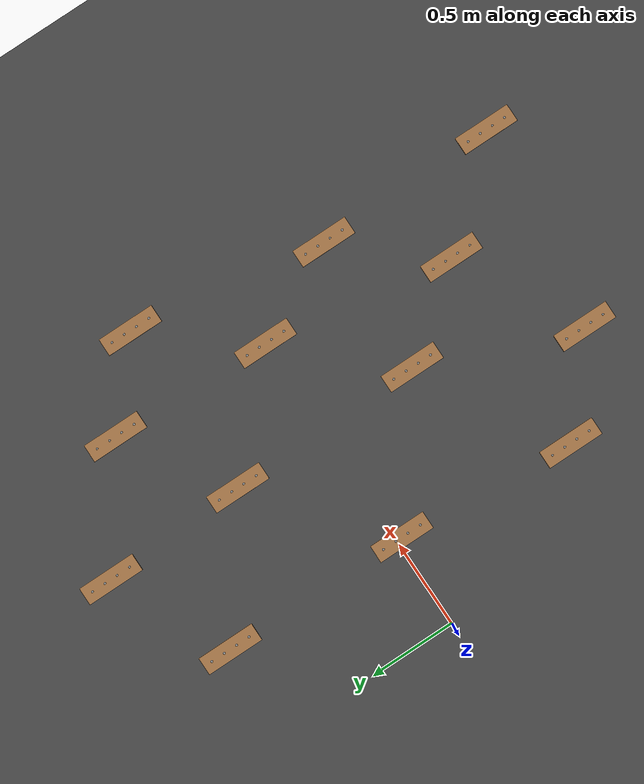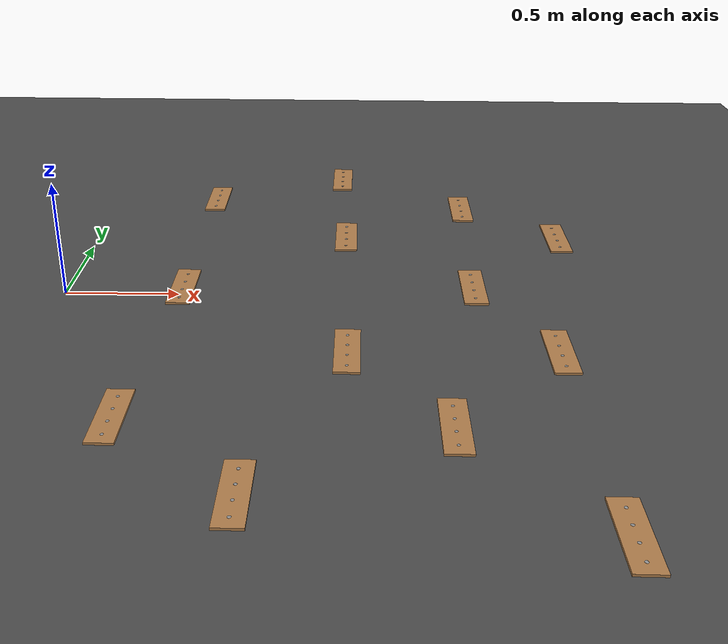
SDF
<sdf version="1.7">
 <world name="default">
  <model name="ground_plane">
   <static>1</static>
   <link name="link">
    <collision name="collision">
     <geometry><plane><normal>0 0 1</normal><size>100 100</size></plane></geometry>
     <surface>
      <contact><collide_bitmask>65535</collide_bitmask></contact>
      <friction><ode><mu>100</mu><mu2>50</mu2></ode></friction>
     </surface>
    </collision>
    <visual name="visual">
     <cast_shadows>0</cast_shadows>
     <geometry><plane><normal>0 0 1</normal><size>100 100</size></plane></geometry>
     <material>
      <script><uri>file://media/materials/scripts/gazebo.material</uri><name>Gazebo/Grey</name></script>
     </material>
    </visual>
   </link>
  </model>
  <model name="asphalt_plane">
   <static>1</static>
   <link name="link">
    <collision name="collision"><geometry><box><size>20 20 0.1</size></box></geometry></collision>
    <visual name="visual">
     <cast_shadows>0</cast_shadows>
     <geometry><box><size>20 20 0.1</size></box></geometry>
     <material>
      <script>
       <uri>model://asphalt_plane/materials/scripts</uri>
       <uri>model://asphalt_plane/materials/textures</uri>
       <name>vrc/asphalt</name>
      </script>
     </material>
    </visual>
   </link>
   <pose>7.06721 0.007221 0 0 -0 0</pose>
  </model>
  <model name="wooden_board">
   <link name="base">
    <pose>0 0 0.00523 0 -0 0</pose>
    <inertial>
     <mass>0.2765</mass>
     <inertia>
      <ixx>0.0025148</ixx>
      <ixy>0</ixy>
      <ixz>0</ixz>
      <iyy>0.00024037</iyy>
      <iyz>0</iyz>
      <izz>0.00275013</izz>
     </inertia>
    </inertial>
    <collision name="collision">
     <geometry><box><size>0.1016 0.3302 0.01046</size></box></geometry>
     <surface>
      <contact>
       <poissons_ratio>0.347</poissons_ratio>
       <elastic_modulus>8.8e+09</elastic_modulus>
       <ode><kp>100000</kp><kd>100</kd><max_vel>100</max_vel><min_depth>0.001</min_depth></ode>
      </contact>
      <friction>
       <torsional>
        <coefficient>1</coefficient>
        <use_patch_radius>0</use_patch_radius>
        <surface_radius>0.01</surface_radius>
       </torsional>
      </friction>
     </surface>
    </collision>
    <visual name="visual">
     <geometry><box><size>0.1016 0.3302 0.01046</size></box></geometry>
     <material>
      <script><uri>file://media/materials/scripts/gazebo.material</uri><name>Gazebo/Wood</name></script>
     </material>
    </visual>
    <visual name="tee_nut_1">
     <pose>0 -0.116 0 0 -0 0</pose>
     <geometry><cylinder><radius>0.00635</radius><length>0.0105646</length></cylinder></geometry>
     <material>
      <script><uri>file://media/materials/scripts/gazebo.material</uri><name>Gazebo/Grey</name></script>
     </material>
    </visual>
    <visual name="tee_nut_2">
     <pose>0 -0.038 0 0 -0 0</pose>
     <geometry><cylinder><radius>0.00635</radius><length>0.0105646</length></cylinder></geometry>
     <material>
      <script><uri>file://media/materials/scripts/gazebo.material</uri><name>Gazebo/Grey</name></script>
     </material>
    </visual>
    <visual name="tee_nut_3">
     <pose>0 0.038 0 0 -0 0</pose>
     <geometry><cylinder><radius>0.00635</radius><length>0.0105646</length></cylinder></geometry>
     <material>
      <script><uri>file://media/materials/scripts/gazebo.material</uri><name>Gazebo/Grey</name></script>
     </material>
    </visual>
    <visual name="tee_nut_4">
     <pose>0 0.116 0 0 -0 0</pose>
     <geometry><cylinder><radius>0.00635</radius><length>0.0105646</length></cylinder></geometry>
     <material>
      <script><uri>file://media/materials/scripts/gazebo.material</uri><name>Gazebo/Grey</name></script>
     </material>
    </visual>
   </link>
   <pose>0.44811 -1.04579 0.048993 0 -0 6e-05</pose>
  </model>
  <model name="wooden_board_0">
   <link name="base">
    <pose>0 0 0.00523 0 -0 0</pose>
    <inertial>
     <mass>0.2765</mass>
     <inertia>
      <ixx>0.0025148</ixx>
      <ixy>0</ixy>
      <ixz>0</ixz>
      <iyy>0.00024037</iyy>
      <iyz>0</iyz>
      <izz>0.00275013</izz>
     </inertia>
    </inertial>
    <collision name="collision">
     <geometry><box><size>0.1016 0.3302 0.01046</size></box></geometry>
     <surface>
      <contact>
       <poissons_ratio>0.347</poissons_ratio>
       <elastic_modulus>8.8e+09</elastic_modulus>
       <ode><kp>100000</kp><kd>100</kd><max_vel>100</max_vel><min_depth>0.001</min_depth></ode>
      </contact>
      <friction>
       <torsional>
        <coefficient>1</coefficient>
        <use_patch_radius>0</use_patch_radius>
        <surface_radius>0.01</surface_radius>
       </torsional>
      </friction>
     </surface>
    </collision>
    <visual name="visual">
     <geometry><box><size>0.1016 0.3302 0.01046</size></box></geometry>
     <material>
      <script><uri>file://media/materials/scripts/gazebo.material</uri><name>Gazebo/Wood</name></script>
     </material>
    </visual>
    <visual name="tee_nut_1">
     <pose>0 -0.116 0 0 -0 0</pose>
     <geometry><cylinder><radius>0.00635</radius><length>0.0105646</length></cylinder></geometry>
     <material>
      <script><uri>file://media/materials/scripts/gazebo.material</uri><name>Gazebo/Grey</name></script>
     </material>
    </visual>
    <visual name="tee_nut_2">
     <pose>0 -0.038 0 0 -0 0</pose>
     <geometry><cylinder><radius>0.00635</radius><length>0.0105646</length></cylinder></geometry>
     <material>
      <script><uri>file://media/materials/scripts/gazebo.material</uri><name>Gazebo/Grey</name></script>
     </material>
    </visual>
    <visual name="tee_nut_3">
     <pose>0 0.038 0 0 -0 0</pose>
     <geometry><cylinder><radius>0.00635</radius><length>0.0105646</length></cylinder></geometry>
     <material>
      <script><uri>file://media/materials/scripts/gazebo.material</uri><name>Gazebo/Grey</name></script>
     </material>
    </visual>
    <visual name="tee_nut_4">
     <pose>0 0.116 0 0 -0 0</pose>
     <geometry><cylinder><radius>0.00635</radius><length>0.0105646</length></cylinder></geometry>
     <material>
      <script><uri>file://media/materials/scripts/gazebo.material</uri><name>Gazebo/Grey</name></script>
     </material>
    </visual>
   </link>
   <pose>0.538764 1.03885 0.048993 0 -0 6e-05</pose>
  </model>
  <model name="wooden_board_1">
   <link name="base">
    <pose>0 0 0.00523 0 -0 0</pose>
    <inertial>
     <mass>0.2765</mass>
     <inertia>
      <ixx>0.0025148</ixx>
      <ixy>0</ixy>
      <ixz>0</ixz>
      <iyy>0.00024037</iyy>
      <iyz>0</iyz>
      <izz>0.00275013</izz>
     </inertia>
    </inertial>
    <collision name="collision">
     <geometry><box><size>0.1016 0.3302 0.01046</size></box></geometry>
     <surface>
      <contact>
       <poissons_ratio>0.347</poissons_ratio>
       <elastic_modulus>8.8e+09</elastic_modulus>
       <ode><kp>100000</kp><kd>100</kd><max_vel>100</max_vel><min_depth>0.001</min_depth></ode>
      </contact>
      <friction>
       <torsional>
        <coefficient>1</coefficient>
        <use_patch_radius>0</use_patch_radius>
        <surface_radius>0.01</surface_radius>
       </torsional>
      </friction>
     </surface>
    </collision>
    <visual name="visual">
     <geometry><box><size>0.1016 0.3302 0.01046</size></box></geometry>
     <material>
      <script><uri>file://media/materials/scripts/gazebo.material</uri><name>Gazebo/Wood</name></script>
     </material>
    </visual>
    <visual name="tee_nut_1">
     <pose>0 -0.116 0 0 -0 0</pose>
     <geometry><cylinder><radius>0.00635</radius><length>0.0105646</length></cylinder></geometry>
     <material>
      <script><uri>file://media/materials/scripts/gazebo.material</uri><name>Gazebo/Grey</name></script>
     </material>
    </visual>
    <visual name="tee_nut_2">
     <pose>0 -0.038 0 0 -0 0</pose>
     <geometry><cylinder><radius>0.00635</radius><length>0.0105646</length></cylinder></geometry>
     <material>
      <script><uri>file://media/materials/scripts/gazebo.material</uri><name>Gazebo/Grey</name></script>
     </material>
    </visual>
    <visual name="tee_nut_3">
     <pose>0 0.038 0 0 -0 0</pose>
     <geometry><cylinder><radius>0.00635</radius><length>0.0105646</length></cylinder></geometry>
     <material>
      <script><uri>file://media/materials/scripts/gazebo.material</uri><name>Gazebo/Grey</name></script>
     </material>
    </visual>
    <visual name="tee_nut_4">
     <pose>0 0.116 0 0 -0 0</pose>
     <geometry><cylinder><radius>0.00635</radius><length>0.0105646</length></cylinder></geometry>
     <material>
      <script><uri>file://media/materials/scripts/gazebo.material</uri><name>Gazebo/Grey</name></script>
     </material>
    </visual>
   </link>
   <pose>0.529233 -0.032208 0.048993 0 -0 6e-05</pose>
  </model>
  <model name="wooden_board_2">
   <link name="base">
    <pose>0 0 0.00523 0 -0 0</pose>
    <inertial>
     <mass>0.2765</mass>
     <inertia>
      <ixx>0.0025148</ixx>
      <ixy>0</ixy>
      <ixz>0</ixz>
      <iyy>0.00024037</iyy>
      <iyz>0</iyz>
      <izz>0.00275013</izz>
     </inertia>
    </inertial>
    <collision name="collision">
     <geometry><box><size>0.1016 0.3302 0.01046</size></box></geometry>
     <surface>
      <contact>
       <poissons_ratio>0.347</poissons_ratio>
       <elastic_modulus>8.8e+09</elastic_modulus>
       <ode><kp>100000</kp><kd>100</kd><max_vel>100</max_vel><min_depth>0.001</min_depth></ode>
      </contact>
      <friction>
       <torsional>
        <coefficient>1</coefficient>
        <use_patch_radius>0</use_patch_radius>
        <surface_radius>0.01</surface_radius>
       </torsional>
      </friction>
     </surface>
    </collision>
    <visual name="visual">
     <geometry><box><size>0.1016 0.3302 0.01046</size></box></geometry>
     <material>
      <script><uri>file://media/materials/scripts/gazebo.material</uri><name>Gazebo/Wood</name></script>
     </material>
    </visual>
    <visual name="tee_nut_1">
     <pose>0 -0.116 0 0 -0 0</pose>
     <geometry><cylinder><radius>0.00635</radius><length>0.0105646</length></cylinder></geometry>
     <material>
      <script><uri>file://media/materials/scripts/gazebo.material</uri><name>Gazebo/Grey</name></script>
     </material>
    </visual>
    <visual name="tee_nut_2">
     <pose>0 -0.038 0 0 -0 0</pose>
     <geometry><cylinder><radius>0.00635</radius><length>0.0105646</length></cylinder></geometry>
     <material>
      <script><uri>file://media/materials/scripts/gazebo.material</uri><name>Gazebo/Grey</name></script>
     </material>
    </visual>
    <visual name="tee_nut_3">
     <pose>0 0.038 0 0 -0 0</pose>
     <geometry><cylinder><radius>0.00635</radius><length>0.0105646</length></cylinder></geometry>
     <material>
      <script><uri>file://media/materials/scripts/gazebo.material</uri><name>Gazebo/Grey</name></script>
     </material>
    </visual>
    <visual name="tee_nut_4">
     <pose>0 0.116 0 0 -0 0</pose>
     <geometry><cylinder><radius>0.00635</radius><length>0.0105646</length></cylinder></geometry>
     <material>
      <script><uri>file://media/materials/scripts/gazebo.material</uri><name>Gazebo/Grey</name></script>
     </material>
    </visual>
   </link>
   <pose>1.24281 -0.573314 0.048993 0 -0 6e-05</pose>
  </model>
  <model name="wooden_board_3">
   <link name="base">
    <pose>0 0 0.00523 0 -0 0</pose>
    <inertial>
     <mass>0.2765</mass>
     <inertia>
      <ixx>0.0025148</ixx>
      <ixy>0</ixy>
      <ixz>0</ixz>
      <iyy>0.00024037</iyy>
      <iyz>0</iyz>
      <izz>0.00275013</izz>
     </inertia>
    </inertial>
    <collision name="collision">
     <geometry><box><size>0.1016 0.3302 0.01046</size></box></geometry>
     <surface>
      <contact>
       <poissons_ratio>0.347</poissons_ratio>
       <elastic_modulus>8.8e+09</elastic_modulus>
       <ode><kp>100000</kp><kd>100</kd><max_vel>100</max_vel><min_depth>0.001</min_depth></ode>
      </contact>
      <friction>
       <torsional>
        <coefficient>1</coefficient>
        <use_patch_radius>0</use_patch_radius>
        <surface_radius>0.01</surface_radius>
       </torsional>
      </friction>
     </surface>
    </collision>
    <visual name="visual">
     <geometry><box><size>0.1016 0.3302 0.01046</size></box></geometry>
     <material>
      <script><uri>file://media/materials/scripts/gazebo.material</uri><name>Gazebo/Wood</name></script>
     </material>
    </visual>
    <visual name="tee_nut_1">
     <pose>0 -0.116 0 0 -0 0</pose>
     <geometry><cylinder><radius>0.00635</radius><length>0.0105646</length></cylinder></geometry>
     <material>
      <script><uri>file://media/materials/scripts/gazebo.material</uri><name>Gazebo/Grey</name></script>
     </material>
    </visual>
    <visual name="tee_nut_2">
     <pose>0 -0.038 0 0 -0 0</pose>
     <geometry><cylinder><radius>0.00635</radius><length>0.0105646</length></cylinder></geometry>
     <material>
      <script><uri>file://media/materials/scripts/gazebo.material</uri><name>Gazebo/Grey</name></script>
     </material>
    </visual>
    <visual name="tee_nut_3">
     <pose>0 0.038 0 0 -0 0</pose>
     <geometry><cylinder><radius>0.00635</radius><length>0.0105646</length></cylinder></geometry>
     <material>
      <script><uri>file://media/materials/scripts/gazebo.material</uri><name>Gazebo/Grey</name></script>
     </material>
    </visual>
    <visual name="tee_nut_4">
     <pose>0 0.116 0 0 -0 0</pose>
     <geometry><cylinder><radius>0.00635</radius><length>0.0105646</length></cylinder></geometry>
     <material>
      <script><uri>file://media/materials/scripts/gazebo.material</uri><name>Gazebo/Grey</name></script>
     </material>
    </visual>
   </link>
   <pose>1.22143 0.541833 0.048993 0 -0 6e-05</pose>
  </model>
  <model name="wooden_board_4">
   <link name="base">
    <pose>0 0 0.00523 0 -0 0</pose>
    <inertial>
     <mass>0.2765</mass>
     <inertia>
      <ixx>0.0025148</ixx>
      <ixy>0</ixy>
      <ixz>0</ixz>
      <iyy>0.00024037</iyy>
      <iyz>0</iyz>
      <izz>0.00275013</izz>
     </inertia>
    </inertial>
    <collision name="collision">
     <geometry><box><size>0.1016 0.3302 0.01046</size></box></geometry>
     <surface>
      <contact>
       <poissons_ratio>0.347</poissons_ratio>
       <elastic_modulus>8.8e+09</elastic_modulus>
       <ode><kp>100000</kp><kd>100</kd><max_vel>100</max_vel><min_depth>0.001</min_depth></ode>
      </contact>
      <friction>
       <torsional>
        <coefficient>1</coefficient>
        <use_patch_radius>0</use_patch_radius>
        <surface_radius>0.01</surface_radius>
       </torsional>
      </friction>
     </surface>
    </collision>
    <visual name="visual">
     <geometry><box><size>0.1016 0.3302 0.01046</size></box></geometry>
     <material>
      <script><uri>file://media/materials/scripts/gazebo.material</uri><name>Gazebo/Wood</name></script>
     </material>
    </visual>
    <visual name="tee_nut_1">
     <pose>0 -0.116 0 0 -0 0</pose>
     <geometry><cylinder><radius>0.00635</radius><length>0.0105646</length></cylinder></geometry>
     <material>
      <script><uri>file://media/materials/scripts/gazebo.material</uri><name>Gazebo/Grey</name></script>
     </material>
    </visual>
    <visual name="tee_nut_2">
     <pose>0 -0.038 0 0 -0 0</pose>
     <geometry><cylinder><radius>0.00635</radius><length>0.0105646</length></cylinder></geometry>
     <material>
      <script><uri>file://media/materials/scripts/gazebo.material</uri><name>Gazebo/Grey</name></script>
     </material>
    </visual>
    <visual name="tee_nut_3">
     <pose>0 0.038 0 0 -0 0</pose>
     <geometry><cylinder><radius>0.00635</radius><length>0.0105646</length></cylinder></geometry>
     <material>
      <script><uri>file://media/materials/scripts/gazebo.material</uri><name>Gazebo/Grey</name></script>
     </material>
    </visual>
    <visual name="tee_nut_4">
     <pose>0 0.116 0 0 -0 0</pose>
     <geometry><cylinder><radius>0.00635</radius><length>0.0105646</length></cylinder></geometry>
     <material>
      <script><uri>file://media/materials/scripts/gazebo.material</uri><name>Gazebo/Grey</name></script>
     </material>
    </visual>
   </link>
   <pose>1.77526 0.001323 0.048993 0 -0 6e-05</pose>
  </model>
  <model name="wooden_board_5">
   <link name="base">
    <pose>0 0 0.00523 0 -0 0</pose>
    <inertial>
     <mass>0.2765</mass>
     <inertia>
      <ixx>0.0025148</ixx>
      <ixy>0</ixy>
      <ixz>0</ixz>
      <iyy>0.00024037</iyy>
      <iyz>0</iyz>
      <izz>0.00275013</izz>
     </inertia>
    </inertial>
    <collision name="collision">
     <geometry><box><size>0.1016 0.3302 0.01046</size></box></geometry>
     <surface>
      <contact>
       <poissons_ratio>0.347</poissons_ratio>
       <elastic_modulus>8.8e+09</elastic_modulus>
       <ode><kp>100000</kp><kd>100</kd><max_vel>100</max_vel><min_depth>0.001</min_depth></ode>
      </contact>
      <friction>
       <torsional>
        <coefficient>1</coefficient>
        <use_patch_radius>0</use_patch_radius>
        <surface_radius>0.01</surface_radius>
       </torsional>
      </friction>
     </surface>
    </collision>
    <visual name="visual">
     <geometry><box><size>0.1016 0.3302 0.01046</size></box></geometry>
     <material>
      <script><uri>file://media/materials/scripts/gazebo.material</uri><name>Gazebo/Wood</name></script>
     </material>
    </visual>
    <visual name="tee_nut_1">
     <pose>0 -0.116 0 0 -0 0</pose>
     <geometry><cylinder><radius>0.00635</radius><length>0.0105646</length></cylinder></geometry>
     <material>
      <script><uri>file://media/materials/scripts/gazebo.material</uri><name>Gazebo/Grey</name></script>
     </material>
    </visual>
    <visual name="tee_nut_2">
     <pose>0 -0.038 0 0 -0 0</pose>
     <geometry><cylinder><radius>0.00635</radius><length>0.0105646</length></cylinder></geometry>
     <material>
      <script><uri>file://media/materials/scripts/gazebo.material</uri><name>Gazebo/Grey</name></script>
     </material>
    </visual>
    <visual name="tee_nut_3">
     <pose>0 0.038 0 0 -0 0</pose>
     <geometry><cylinder><radius>0.00635</radius><length>0.0105646</length></cylinder></geometry>
     <material>
      <script><uri>file://media/materials/scripts/gazebo.material</uri><name>Gazebo/Grey</name></script>
     </material>
    </visual>
    <visual name="tee_nut_4">
     <pose>0 0.116 0 0 -0 0</pose>
     <geometry><cylinder><radius>0.00635</radius><length>0.0105646</length></cylinder></geometry>
     <material>
      <script><uri>file://media/materials/scripts/gazebo.material</uri><name>Gazebo/Grey</name></script>
     </material>
    </visual>
   </link>
   <pose>1.61144 -1.06853 0.048993 0 -0 6e-05</pose>
  </model>
  <model name="wooden_board_6">
   <link name="base">
    <pose>0 0 0.00523 0 -0 0</pose>
    <inertial>
     <mass>0.2765</mass>
     <inertia>
      <ixx>0.0025148</ixx>
      <ixy>0</ixy>
      <ixz>0</ixz>
      <iyy>0.00024037</iyy>
      <iyz>0</iyz>
      <izz>0.00275013</izz>
     </inertia>
    </inertial>
    <collision name="collision">
     <geometry><box><size>0.1016 0.3302 0.01046</size></box></geometry>
     <surface>
      <contact>
       <poissons_ratio>0.347</poissons_ratio>
       <elastic_modulus>8.8e+09</elastic_modulus>
       <ode><kp>100000</kp><kd>100</kd><max_vel>100</max_vel><min_depth>0.001</min_depth></ode>
      </contact>
      <friction>
       <torsional>
        <coefficient>1</coefficient>
        <use_patch_radius>0</use_patch_radius>
        <surface_radius>0.01</surface_radius>
       </torsional>
      </friction>
     </surface>
    </collision>
    <visual name="visual">
     <geometry><box><size>0.1016 0.3302 0.01046</size></box></geometry>
     <material>
      <script><uri>file://media/materials/scripts/gazebo.material</uri><name>Gazebo/Wood</name></script>
     </material>
    </visual>
    <visual name="tee_nut_1">
     <pose>0 -0.116 0 0 -0 0</pose>
     <geometry><cylinder><radius>0.00635</radius><length>0.0105646</length></cylinder></geometry>
     <material>
      <script><uri>file://media/materials/scripts/gazebo.material</uri><name>Gazebo/Grey</name></script>
     </material>
    </visual>
    <visual name="tee_nut_2">
     <pose>0 -0.038 0 0 -0 0</pose>
     <geometry><cylinder><radius>0.00635</radius><length>0.0105646</length></cylinder></geometry>
     <material>
      <script><uri>file://media/materials/scripts/gazebo.material</uri><name>Gazebo/Grey</name></script>
     </material>
    </visual>
    <visual name="tee_nut_3">
     <pose>0 0.038 0 0 -0 0</pose>
     <geometry><cylinder><radius>0.00635</radius><length>0.0105646</length></cylinder></geometry>
     <material>
      <script><uri>file://media/materials/scripts/gazebo.material</uri><name>Gazebo/Grey</name></script>
     </material>
    </visual>
    <visual name="tee_nut_4">
     <pose>0 0.116 0 0 -0 0</pose>
     <geometry><cylinder><radius>0.00635</radius><length>0.0105646</length></cylinder></geometry>
     <material>
      <script><uri>file://media/materials/scripts/gazebo.material</uri><name>Gazebo/Grey</name></script>
     </material>
    </visual>
   </link>
   <pose>1.80155 0.928461 0.048993 0 -0 6e-05</pose>
  </model>
  <model name="wooden_board_7">
   <link name="base">
    <pose>0 0 0.00523 0 -0 0</pose>
    <inertial>
     <mass>0.2765</mass>
     <inertia>
      <ixx>0.0025148</ixx>
      <ixy>0</ixy>
      <ixz>0</ixz>
      <iyy>0.00024037</iyy>
      <iyz>0</iyz>
      <izz>0.00275013</izz>
     </inertia>
    </inertial>
    <collision name="collision">
     <geometry><box><size>0.1016 0.3302 0.01046</size></box></geometry>
     <surface>
      <contact>
       <poissons_ratio>0.347</poissons_ratio>
       <elastic_modulus>8.8e+09</elastic_modulus>
       <ode><kp>100000</kp><kd>100</kd><max_vel>100</max_vel><min_depth>0.001</min_depth></ode>
      </contact>
      <friction>
       <torsional>
        <coefficient>1</coefficient>
        <use_patch_radius>0</use_patch_radius>
        <surface_radius>0.01</surface_radius>
       </torsional>
      </friction>
     </surface>
    </collision>
    <visual name="visual">
     <geometry><box><size>0.1016 0.3302 0.01046</size></box></geometry>
     <material>
      <script><uri>file://media/materials/scripts/gazebo.material</uri><name>Gazebo/Wood</name></script>
     </material>
    </visual>
    <visual name="tee_nut_1">
     <pose>0 -0.116 0 0 -0 0</pose>
     <geometry><cylinder><radius>0.00635</radius><length>0.0105646</length></cylinder></geometry>
     <material>
      <script><uri>file://media/materials/scripts/gazebo.material</uri><name>Gazebo/Grey</name></script>
     </material>
    </visual>
    <visual name="tee_nut_2">
     <pose>0 -0.038 0 0 -0 0</pose>
     <geometry><cylinder><radius>0.00635</radius><length>0.0105646</length></cylinder></geometry>
     <material>
      <script><uri>file://media/materials/scripts/gazebo.material</uri><name>Gazebo/Grey</name></script>
     </material>
    </visual>
    <visual name="tee_nut_3">
     <pose>0 0.038 0 0 -0 0</pose>
     <geometry><cylinder><radius>0.00635</radius><length>0.0105646</length></cylinder></geometry>
     <material>
      <script><uri>file://media/materials/scripts/gazebo.material</uri><name>Gazebo/Grey</name></script>
     </material>
    </visual>
    <visual name="tee_nut_4">
     <pose>0 0.116 0 0 -0 0</pose>
     <geometry><cylinder><radius>0.00635</radius><length>0.0105646</length></cylinder></geometry>
     <material>
      <script><uri>file://media/materials/scripts/gazebo.material</uri><name>Gazebo/Grey</name></script>
     </material>
    </visual>
   </link>
   <pose>2.05123 -0.552099 0.048993 0 -0 6e-05</pose>
  </model>
  <model name="wooden_board_8">
   <link name="base">
    <pose>0 0 0.00523 0 -0 0</pose>
    <inertial>
     <mass>0.2765</mass>
     <inertia>
      <ixx>0.0025148</ixx>
      <ixy>0</ixy>
      <ixz>0</ixz>
      <iyy>0.00024037</iyy>
      <iyz>0</iyz>
      <izz>0.00275013</izz>
     </inertia>
    </inertial>
    <collision name="collision">
     <geometry><box><size>0.1016 0.3302 0.01046</size></box></geometry>
     <surface>
      <contact>
       <poissons_ratio>0.347</poissons_ratio>
       <elastic_modulus>8.8e+09</elastic_modulus>
       <ode><kp>100000</kp><kd>100</kd><max_vel>100</max_vel><min_depth>0.001</min_depth></ode>
      </contact>
      <friction>
       <torsional>
        <coefficient>1</coefficient>
        <use_patch_radius>0</use_patch_radius>
        <surface_radius>0.01</surface_radius>
       </torsional>
      </friction>
     </surface>
    </collision>
    <visual name="visual">
     <geometry><box><size>0.1016 0.3302 0.01046</size></box></geometry>
     <material>
      <script><uri>file://media/materials/scripts/gazebo.material</uri><name>Gazebo/Wood</name></script>
     </material>
    </visual>
    <visual name="tee_nut_1">
     <pose>0 -0.116 0 0 -0 0</pose>
     <geometry><cylinder><radius>0.00635</radius><length>0.0105646</length></cylinder></geometry>
     <material>
      <script><uri>file://media/materials/scripts/gazebo.material</uri><name>Gazebo/Grey</name></script>
     </material>
    </visual>
    <visual name="tee_nut_2">
     <pose>0 -0.038 0 0 -0 0</pose>
     <geometry><cylinder><radius>0.00635</radius><length>0.0105646</length></cylinder></geometry>
     <material>
      <script><uri>file://media/materials/scripts/gazebo.material</uri><name>Gazebo/Grey</name></script>
     </material>
    </visual>
    <visual name="tee_nut_3">
     <pose>0 0.038 0 0 -0 0</pose>
     <geometry><cylinder><radius>0.00635</radius><length>0.0105646</length></cylinder></geometry>
     <material>
      <script><uri>file://media/materials/scripts/gazebo.material</uri><name>Gazebo/Grey</name></script>
     </material>
    </visual>
    <visual name="tee_nut_4">
     <pose>0 0.116 0 0 -0 0</pose>
     <geometry><cylinder><radius>0.00635</radius><length>0.0105646</length></cylinder></geometry>
     <material>
      <script><uri>file://media/materials/scripts/gazebo.material</uri><name>Gazebo/Grey</name></script>
     </material>
    </visual>
   </link>
   <pose>2.22598 0.556631 0.048993 0 -0 6e-05</pose>
  </model>
  <model name="wooden_board_9">
   <link name="base">
    <pose>0 0 0.00523 0 -0 0</pose>
    <inertial>
     <mass>0.2765</mass>
     <inertia>
      <ixx>0.0025148</ixx>
      <ixy>0</ixy>
      <ixz>0</ixz>
      <iyy>0.00024037</iyy>
      <iyz>0</iyz>
      <izz>0.00275013</izz>
     </inertia>
    </inertial>
    <collision name="collision">
     <geometry><box><size>0.1016 0.3302 0.01046</size></box></geometry>
     <surface>
      <contact>
       <poissons_ratio>0.347</poissons_ratio>
       <elastic_modulus>8.8e+09</elastic_modulus>
       <ode><kp>100000</kp><kd>100</kd><max_vel>100</max_vel><min_depth>0.001</min_depth></ode>
      </contact>
      <friction>
       <torsional>
        <coefficient>1</coefficient>
        <use_patch_radius>0</use_patch_radius>
        <surface_radius>0.01</surface_radius>
       </torsional>
      </friction>
     </surface>
    </collision>
    <visual name="visual">
     <geometry><box><size>0.1016 0.3302 0.01046</size></box></geometry>
     <material>
      <script><uri>file://media/materials/scripts/gazebo.material</uri><name>Gazebo/Wood</name></script>
     </material>
    </visual>
    <visual name="tee_nut_1">
     <pose>0 -0.116 0 0 -0 0</pose>
     <geometry><cylinder><radius>0.00635</radius><length>0.0105646</length></cylinder></geometry>
     <material>
      <script><uri>file://media/materials/scripts/gazebo.material</uri><name>Gazebo/Grey</name></script>
     </material>
    </visual>
    <visual name="tee_nut_2">
     <pose>0 -0.038 0 0 -0 0</pose>
     <geometry><cylinder><radius>0.00635</radius><length>0.0105646</length></cylinder></geometry>
     <material>
      <script><uri>file://media/materials/scripts/gazebo.material</uri><name>Gazebo/Grey</name></script>
     </material>
    </visual>
    <visual name="tee_nut_3">
     <pose>0 0.038 0 0 -0 0</pose>
     <geometry><cylinder><radius>0.00635</radius><length>0.0105646</length></cylinder></geometry>
     <material>
      <script><uri>file://media/materials/scripts/gazebo.material</uri><name>Gazebo/Grey</name></script>
     </material>
    </visual>
    <visual name="tee_nut_4">
     <pose>0 0.116 0 0 -0 0</pose>
     <geometry><cylinder><radius>0.00635</radius><length>0.0105646</length></cylinder></geometry>
     <material>
      <script><uri>file://media/materials/scripts/gazebo.material</uri><name>Gazebo/Grey</name></script>
     </material>
    </visual>
   </link>
   <pose>2.07415 -1.59954 0.048993 0 -0 6e-05</pose>
  </model>
  <model name="wooden_board_10">
   <link name="base">
    <pose>0 0 0.00523 0 -0 0</pose>
    <inertial>
     <mass>0.2765</mass>
     <inertia>
      <ixx>0.0025148</ixx>
      <ixy>0</ixy>
      <ixz>0</ixz>
      <iyy>0.00024037</iyy>
      <iyz>0</iyz>
      <izz>0.00275013</izz>
     </inertia>
    </inertial>
    <collision name="collision">
     <geometry><box><size>0.1016 0.3302 0.01046</size></box></geometry>
     <surface>
      <contact>
       <poissons_ratio>0.347</poissons_ratio>
       <elastic_modulus>8.8e+09</elastic_modulus>
       <ode><kp>100000</kp><kd>100</kd><max_vel>100</max_vel><min_depth>0.001</min_depth></ode>
      </contact>
      <friction>
       <torsional>
        <coefficient>1</coefficient>
        <use_patch_radius>0</use_patch_radius>
        <surface_radius>0.01</surface_radius>
       </torsional>
      </friction>
     </surface>
    </collision>
    <visual name="visual">
     <geometry><box><size>0.1016 0.3302 0.01046</size></box></geometry>
     <material>
      <script><uri>file://media/materials/scripts/gazebo.material</uri><name>Gazebo/Wood</name></script>
     </material>
    </visual>
    <visual name="tee_nut_1">
     <pose>0 -0.116 0 0 -0 0</pose>
     <geometry><cylinder><radius>0.00635</radius><length>0.0105646</length></cylinder></geometry>
     <material>
      <script><uri>file://media/materials/scripts/gazebo.material</uri><name>Gazebo/Grey</name></script>
     </material>
    </visual>
    <visual name="tee_nut_2">
     <pose>0 -0.038 0 0 -0 0</pose>
     <geometry><cylinder><radius>0.00635</radius><length>0.0105646</length></cylinder></geometry>
     <material>
      <script><uri>file://media/materials/scripts/gazebo.material</uri><name>Gazebo/Grey</name></script>
     </material>
    </visual>
    <visual name="tee_nut_3">
     <pose>0 0.038 0 0 -0 0</pose>
     <geometry><cylinder><radius>0.00635</radius><length>0.0105646</length></cylinder></geometry>
     <material>
      <script><uri>file://media/materials/scripts/gazebo.material</uri><name>Gazebo/Grey</name></script>
     </material>
    </visual>
    <visual name="tee_nut_4">
     <pose>0 0.116 0 0 -0 0</pose>
     <geometry><cylinder><radius>0.00635</radius><length>0.0105646</length></cylinder></geometry>
     <material>
      <script><uri>file://media/materials/scripts/gazebo.material</uri><name>Gazebo/Grey</name></script>
     </material>
    </visual>
   </link>
   <pose>0.91742 -1.44957 0.048993 0 -0 6e-05</pose>
  </model>
  <model name="wooden_board_14">
   <link name="base">
    <pose>0 0 0.00523 0 -0 0</pose>
    <inertial>
     <mass>0.2765</mass>
     <inertia>
      <ixx>0.0025148</ixx>
      <ixy>0</ixy>
      <ixz>0</ixz>
      <iyy>0.00024037</iyy>
      <iyz>0</iyz>
      <izz>0.00275013</izz>
     </inertia>
    </inertial>
    <collision name="collision">
     <geometry><box><size>0.1016 0.3302 0.01046</size></box></geometry>
     <surface>
      <contact>
       <poissons_ratio>0.347</poissons_ratio>
       <elastic_modulus>8.8e+09</elastic_modulus>
       <ode><kp>100000</kp><kd>100</kd><max_vel>100</max_vel><min_depth>0.001</min_depth></ode>
      </contact>
      <friction>
       <torsional>
        <coefficient>1</coefficient>
        <use_patch_radius>0</use_patch_radius>
        <surface_radius>0.01</surface_radius>
       </torsional>
      </friction>
     </surface>
    </collision>
    <visual name="visual">
     <geometry><box><size>0.1016 0.3302 0.01046</size></box></geometry>
     <material>
      <script><uri>file://media/materials/scripts/gazebo.material</uri><name>Gazebo/Wood</name></script>
     </material>
    </visual>
    <visual name="tee_nut_1">
     <pose>0 -0.116 0 0 -0 0</pose>
     <geometry><cylinder><radius>0.00635</radius><length>0.0105646</length></cylinder></geometry>
     <material>
      <script><uri>file://media/materials/scripts/gazebo.material</uri><name>Gazebo/Grey</name></script>
     </material>
    </visual>
    <visual name="tee_nut_2">
     <pose>0 -0.038 0 0 -0 0</pose>
     <geometry><cylinder><radius>0.00635</radius><length>0.0105646</length></cylinder></geometry>
     <material>
      <script><uri>file://media/materials/scripts/gazebo.material</uri><name>Gazebo/Grey</name></script>
     </material>
    </visual>
    <visual name="tee_nut_3">
     <pose>0 0.038 0 0 -0 0</pose>
     <geometry><cylinder><radius>0.00635</radius><length>0.0105646</length></cylinder></geometry>
     <material>
      <script><uri>file://media/materials/scripts/gazebo.material</uri><name>Gazebo/Grey</name></script>
     </material>
    </visual>
    <visual name="tee_nut_4">
     <pose>0 0.116 0 0 -0 0</pose>
     <geometry><cylinder><radius>0.00635</radius><length>0.0105646</length></cylinder></geometry>
     <material>
      <script><uri>file://media/materials/scripts/gazebo.material</uri><name>Gazebo/Grey</name></script>
     </material>
    </visual>
   </link>
   <pose>1.18886 1.35915 0.048993 0 -0 6e-05</pose>
  </model>
 </world>
</sdf>
